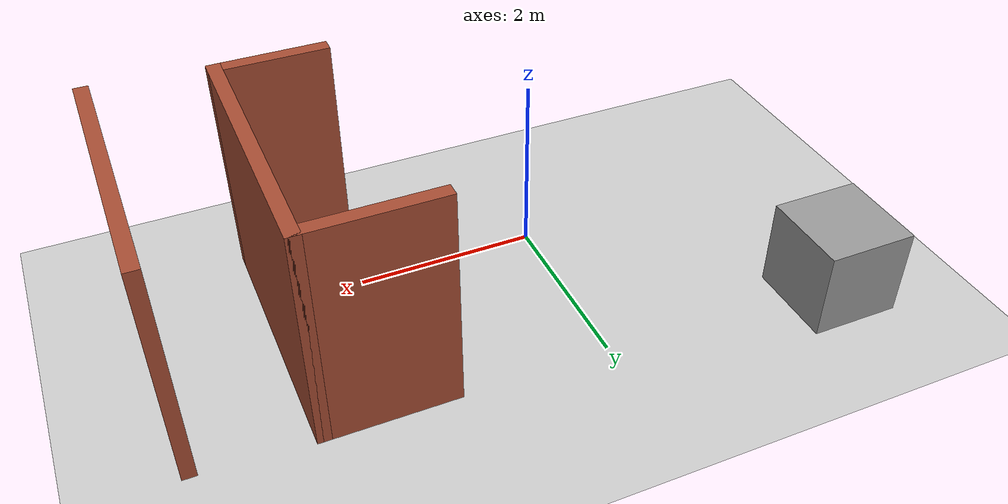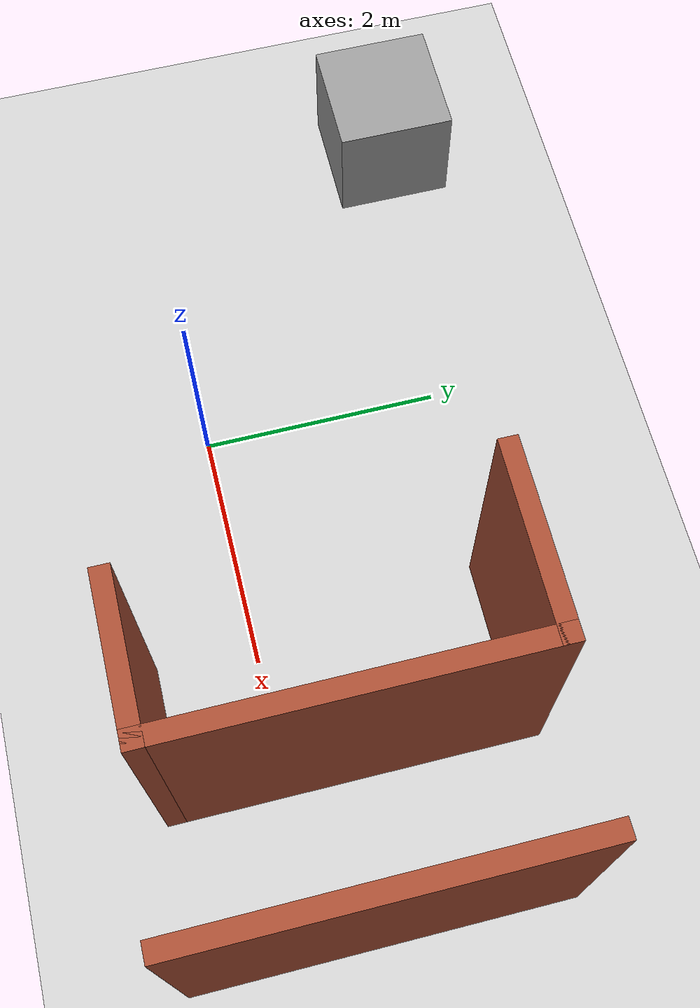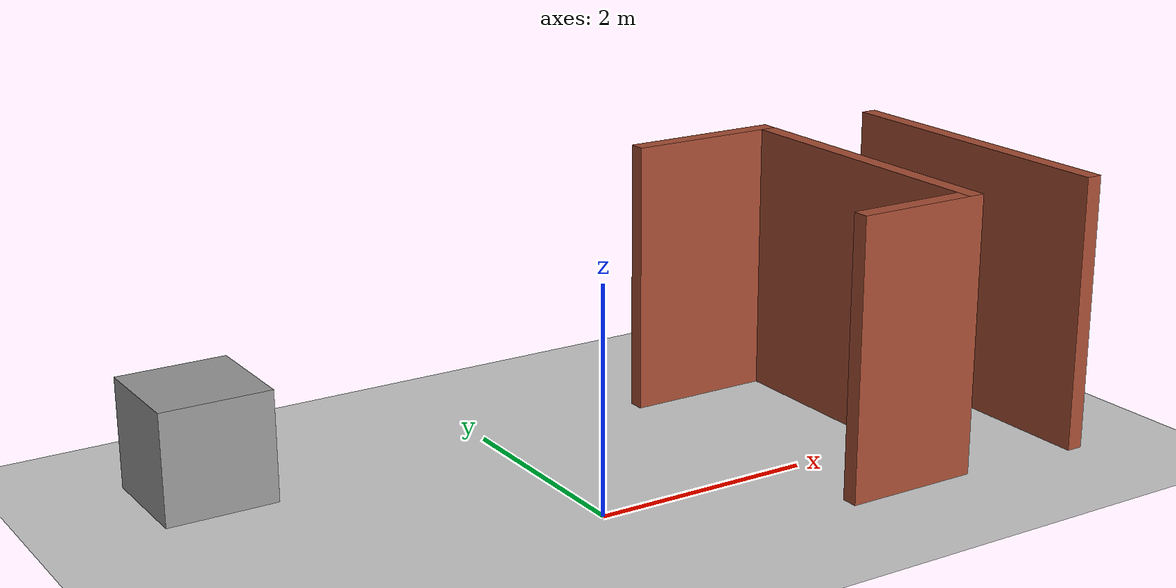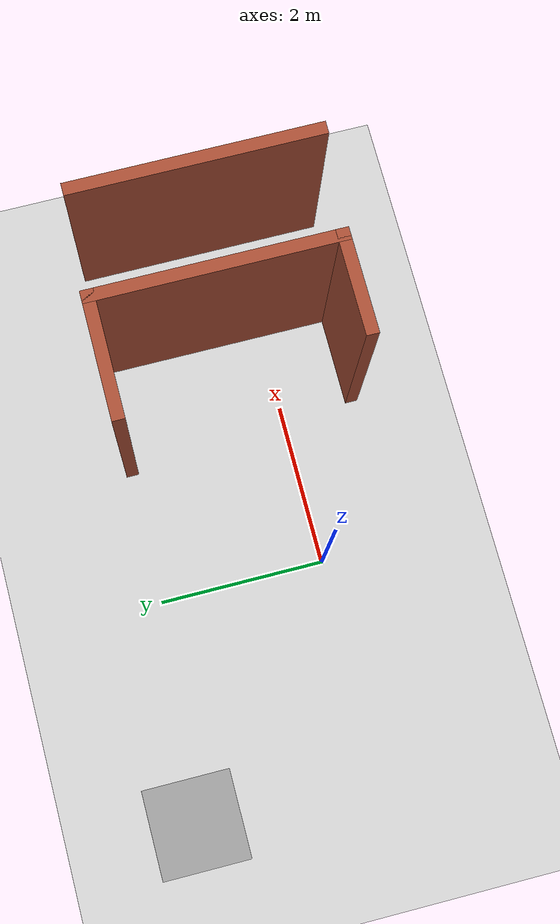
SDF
<sdf version="1.6">
 <world name="default">
  <plugin filename="libgazebo_ros_state.so" name="gazebo_states"/>
  <light name="sun" type="directional">
   <pose>0 0 10 0 -0 0</pose>
   <diffuse>0.8 0.8 0.8 1</diffuse>
   <specular>0.2 0.2 0.2 1</specular>
   <attenuation>
    <range>1000</range>
    <constant>0.9</constant>
    <linear>0.01</linear>
    <quadratic>0.001</quadratic>
   </attenuation>
   <direction>-0.5 0.1 -0.9</direction>
  </light>
  <model name="ground_plane">
   <static>1</static>
   <link name="link">
    <collision name="collision">
     <geometry><plane><normal>0 0 1</normal><size>100 100</size></plane></geometry>
     <surface><friction><ode><mu>100</mu><mu2>50</mu2></ode></friction></surface>
    </collision>
    <visual name="visual">
     <cast_shadows>0</cast_shadows>
     <geometry><plane><normal>0 0 1</normal><size>100 100</size></plane></geometry>
     <material>
      <script><uri>file://media/materials/scripts/gazebo.material</uri><name>Gazebo/Grey</name></script>
     </material>
    </visual>
   </link>
  </model>
  <gravity>0 0 -9.8</gravity>
  <magnetic_field>6e-06 2.3e-05 -4.2e-05</magnetic_field>
  <atmosphere type="adiabatic"/>
  <physics name="default_physics" default="0" type="ode">
   <max_step_size>0.001</max_step_size>
   <real_time_factor>1</real_time_factor>
   <real_time_update_rate>1000</real_time_update_rate>
  </physics>
  <scene><ambient>0.4 0.4 0.4 1</ambient><background>0.7 0.7 0.7 1</background><shadows>1</shadows></scene>
  <audio><device>default</device></audio>
  <spherical_coordinates>
   <surface_model>EARTH_WGS84</surface_model>
   <latitude_deg>0</latitude_deg>
   <longitude_deg>0</longitude_deg>
   <elevation>0</elevation>
   <heading_deg>0</heading_deg>
  </spherical_coordinates>
  <model name="Untitled">
   <pose>3 0.5 0 0 -0 0</pose>
   <link name="Wall_0">
    <collision name="Wall_0_Collision">
     <geometry><box><size>3 0.15 2.5</size></box></geometry>
     <pose>0 0 1.25 0 -0 0</pose>
    </collision>
    <visual name="Wall_0_Visual">
     <pose>0 0 1.25 0 -0 0</pose>
     <geometry><box><size>3 0.15 2.5</size></box></geometry>
     <material>
      <script><uri>file://media/materials/scripts/gazebo.material</uri><name>Gazebo/Bricks</name></script>
      <ambient>1 1 1 1</ambient>
     </material>
     <meta><layer>0</layer></meta>
    </visual>
    <pose>1.30701 -0.04247 0 0 -0 -1.5708</pose>
   </link>
   <link name="Wall_6">
    <collision name="Wall_6_Collision">
     <geometry><box><size>1.5 0.15 2.5</size></box></geometry>
     <pose>0 0 1.25 0 -0 0</pose>
    </collision>
    <visual name="Wall_6_Visual">
     <pose>0 0 1.25 0 -0 0</pose>
     <geometry><box><size>1.5 0.15 2.5</size></box></geometry>
     <material>
      <script><uri>file://media/materials/scripts/gazebo.material</uri><name>Gazebo/Bricks</name></script>
      <ambient>1 1 1 1</ambient>
     </material>
     <meta><layer>0</layer></meta>
    </visual>
    <pose>-0.632011 1.46747 0 0 -0 0</pose>
   </link>
   <link name="Wall_7">
    <collision name="Wall_7_Collision">
     <geometry><box><size>3 0.15 2.5</size></box></geometry>
     <pose>0 0 1.25 0 -0 0</pose>
    </collision>
    <visual name="Wall_7_Visual">
     <pose>0 0 1.25 0 -0 0</pose>
     <geometry><box><size>3 0.15 2.5</size></box></geometry>
     <material>
      <script><uri>file://media/materials/scripts/gazebo.material</uri><name>Gazebo/Bricks</name></script>
      <ambient>1 1 1 1</ambient>
     </material>
     <meta><layer>0</layer></meta>
    </visual>
    <pose>0.042989 0.04247 0 0 -0 -1.5708</pose>
   </link>
   <link name="Wall_8">
    <collision name="Wall_8_Collision">
     <geometry><box><size>1.25 0.15 2.5</size></box></geometry>
     <pose>0 0 1.25 0 -0 0</pose>
    </collision>
    <visual name="Wall_8_Visual">
     <pose>0 0 1.25 0 -0 0</pose>
     <geometry><box><size>1.25 0.15 2.5</size></box></geometry>
     <material>
      <script><uri>file://media/materials/scripts/gazebo.material</uri><name>Gazebo/Bricks</name></script>
      <ambient>1 1 1 1</ambient>
     </material>
     <meta><layer>0</layer></meta>
    </visual>
    <pose>-0.507011 -1.38253 0 0 -0 3.14159</pose>
   </link>
   <static>1</static>
  </model>
  <model name="unit_box">
   <pose>-2.61647 2.21486 0.5 0 -0 0</pose>
   <link name="link">
    <inertial>
     <mass>1</mass>
     <inertia>
      <ixx>0.166667</ixx>
      <ixy>0</ixy>
      <ixz>0</ixz>
      <iyy>0.166667</iyy>
      <iyz>0</iyz>
      <izz>0.166667</izz>
     </inertia>
    </inertial>
    <collision name="collision"><geometry><box><size>1 1 1</size></box></geometry></collision>
    <visual name="visual">
     <geometry><box><size>1 1 1</size></box></geometry>
     <material>
      <script><name>Gazebo/Grey</name><uri>file://media/materials/scripts/gazebo.material</uri></script>
     </material>
    </visual>
   </link>
  </model>
 </world>
</sdf>
